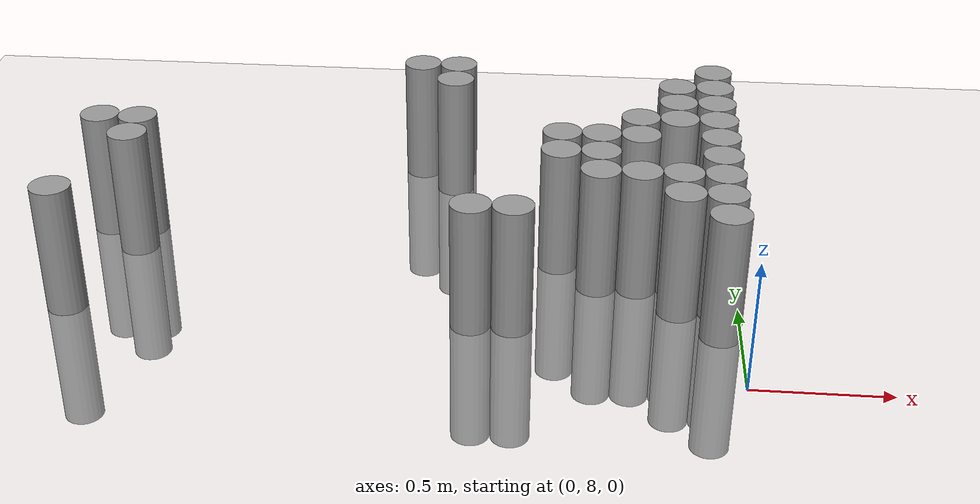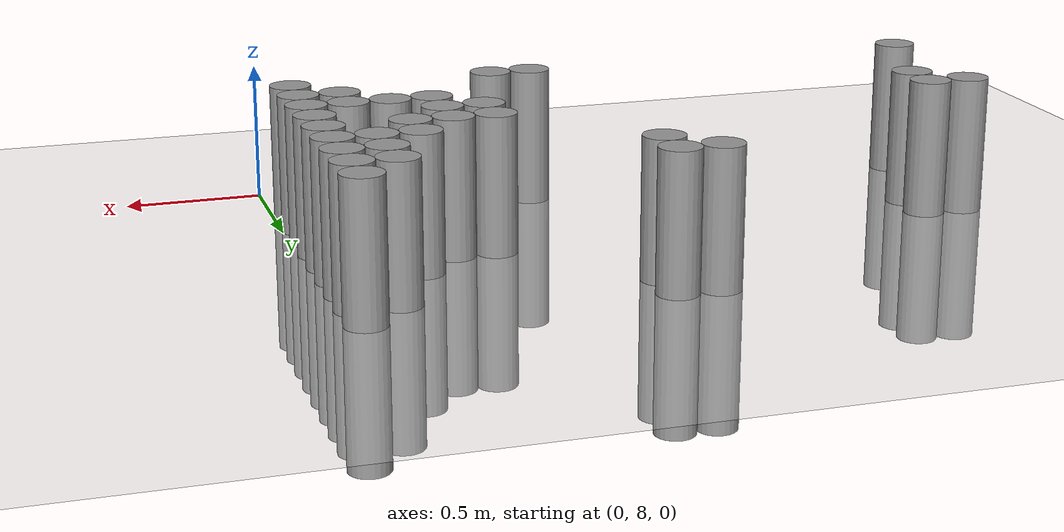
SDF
<sdf version="1.6">
 <world name="default">
  <model name="ground_plane">
   <static>1</static>
   <static>1</static>
   <link name="link">
    <collision name="collision">
     <geometry><plane><normal>0 0 1</normal><size>100 100</size></plane></geometry>
     <surface><friction><ode><mu>100</mu><mu2>50</mu2></ode></friction></surface>
    </collision>
    <visual name="visual">
     <cast_shadows>0</cast_shadows>
     <geometry><plane><normal>0 0 1</normal><size>100 100</size></plane></geometry>
     <material>
      <script><uri>file://media/materials/scripts/gazebo.material</uri><name>Gazebo/Grey</name></script>
     </material>
    </visual>
   </link>
  </model>
  <model name="unit_cylinder_169">
   <static>1</static>
   <pose>-2.475000 8.325000 0.000000 0.000000 0.000000 0.000000</pose>
   <link name="link">
    <inertial>
     <mass>1</mass>
     <inertia><ixx>0.145833</ixx><ixy>0</ixy><ixz>0</ixz><iyy>0.145833</iyy><iyz>0</iyz><izz>0.125</izz></inertia>
    </inertial>
    <collision name="collision">
     <geometry><cylinder><radius>0.075000</radius><length>1</length></cylinder></geometry>
    </collision>
    <visual name="visual">
     <geometry><cylinder><radius>0.075000</radius><length>1</length></cylinder></geometry>
     <material>
      <script><name>Gazebo/Grey</name><uri>file://media/materials/scripts/gazebo.material</uri></script>
     </material>
    </visual>
   </link>
  </model>
  <model name="unit_cylinder_170">
   <static>1</static>
   <pose>-2.475000 8.925000 0.000000 0.000000 0.000000 0.000000</pose>
   <link name="link">
    <inertial>
     <mass>1</mass>
     <inertia><ixx>0.145833</ixx><ixy>0</ixy><ixz>0</ixz><iyy>0.145833</iyy><iyz>0</iyz><izz>0.125</izz></inertia>
    </inertial>
    <collision name="collision">
     <geometry><cylinder><radius>0.075000</radius><length>1</length></cylinder></geometry>
    </collision>
    <visual name="visual">
     <geometry><cylinder><radius>0.075000</radius><length>1</length></cylinder></geometry>
     <material>
      <script><name>Gazebo/Grey</name><uri>file://media/materials/scripts/gazebo.material</uri></script>
     </material>
    </visual>
   </link>
  </model>
  <model name="unit_cylinder_171">
   <static>1</static>
   <pose>-2.325000 8.775000 0.000000 0.000000 0.000000 0.000000</pose>
   <link name="link">
    <inertial>
     <mass>1</mass>
     <inertia><ixx>0.145833</ixx><ixy>0</ixy><ixz>0</ixz><iyy>0.145833</iyy><iyz>0</iyz><izz>0.125</izz></inertia>
    </inertial>
    <collision name="collision">
     <geometry><cylinder><radius>0.075000</radius><length>1</length></cylinder></geometry>
    </collision>
    <visual name="visual">
     <geometry><cylinder><radius>0.075000</radius><length>1</length></cylinder></geometry>
     <material>
      <script><name>Gazebo/Grey</name><uri>file://media/materials/scripts/gazebo.material</uri></script>
     </material>
    </visual>
   </link>
  </model>
  <model name="unit_cylinder_172">
   <static>1</static>
   <pose>-2.325000 8.925000 0.000000 0.000000 0.000000 0.000000</pose>
   <link name="link">
    <inertial>
     <mass>1</mass>
     <inertia><ixx>0.145833</ixx><ixy>0</ixy><ixz>0</ixz><iyy>0.145833</iyy><iyz>0</iyz><izz>0.125</izz></inertia>
    </inertial>
    <collision name="collision">
     <geometry><cylinder><radius>0.075000</radius><length>1</length></cylinder></geometry>
    </collision>
    <visual name="visual">
     <geometry><cylinder><radius>0.075000</radius><length>1</length></cylinder></geometry>
     <material>
      <script><name>Gazebo/Grey</name><uri>file://media/materials/scripts/gazebo.material</uri></script>
     </material>
    </visual>
   </link>
  </model>
  <model name="unit_cylinder_192">
   <static>1</static>
   <pose>-1.275000 9.525000 0.000000 0.000000 0.000000 0.000000</pose>
   <link name="link">
    <inertial>
     <mass>1</mass>
     <inertia><ixx>0.145833</ixx><ixy>0</ixy><ixz>0</ixz><iyy>0.145833</iyy><iyz>0</iyz><izz>0.125</izz></inertia>
    </inertial>
    <collision name="collision">
     <geometry><cylinder><radius>0.075000</radius><length>1</length></cylinder></geometry>
    </collision>
    <visual name="visual">
     <geometry><cylinder><radius>0.075000</radius><length>1</length></cylinder></geometry>
     <material>
      <script><name>Gazebo/Grey</name><uri>file://media/materials/scripts/gazebo.material</uri></script>
     </material>
    </visual>
   </link>
  </model>
  <model name="unit_cylinder_195">
   <static>1</static>
   <pose>-1.125000 9.375000 0.000000 0.000000 0.000000 0.000000</pose>
   <link name="link">
    <inertial>
     <mass>1</mass>
     <inertia><ixx>0.145833</ixx><ixy>0</ixy><ixz>0</ixz><iyy>0.145833</iyy><iyz>0</iyz><izz>0.125</izz></inertia>
    </inertial>
    <collision name="collision">
     <geometry><cylinder><radius>0.075000</radius><length>1</length></cylinder></geometry>
    </collision>
    <visual name="visual">
     <geometry><cylinder><radius>0.075000</radius><length>1</length></cylinder></geometry>
     <material>
      <script><name>Gazebo/Grey</name><uri>file://media/materials/scripts/gazebo.material</uri></script>
     </material>
    </visual>
   </link>
  </model>
  <model name="unit_cylinder_196">
   <static>1</static>
   <pose>-1.125000 9.525000 0.000000 0.000000 0.000000 0.000000</pose>
   <link name="link">
    <inertial>
     <mass>1</mass>
     <inertia><ixx>0.145833</ixx><ixy>0</ixy><ixz>0</ixz><iyy>0.145833</iyy><iyz>0</iyz><izz>0.125</izz></inertia>
    </inertial>
    <collision name="collision">
     <geometry><cylinder><radius>0.075000</radius><length>1</length></cylinder></geometry>
    </collision>
    <visual name="visual">
     <geometry><cylinder><radius>0.075000</radius><length>1</length></cylinder></geometry>
     <material>
      <script><name>Gazebo/Grey</name><uri>file://media/materials/scripts/gazebo.material</uri></script>
     </material>
    </visual>
   </link>
  </model>
  <model name="unit_cylinder_198">
   <static>1</static>
   <pose>-0.975000 8.325000 0.000000 0.000000 0.000000 0.000000</pose>
   <link name="link">
    <inertial>
     <mass>1</mass>
     <inertia><ixx>0.145833</ixx><ixy>0</ixy><ixz>0</ixz><iyy>0.145833</iyy><iyz>0</iyz><izz>0.125</izz></inertia>
    </inertial>
    <collision name="collision">
     <geometry><cylinder><radius>0.075000</radius><length>1</length></cylinder></geometry>
    </collision>
    <visual name="visual">
     <geometry><cylinder><radius>0.075000</radius><length>1</length></cylinder></geometry>
     <material>
      <script><name>Gazebo/Grey</name><uri>file://media/materials/scripts/gazebo.material</uri></script>
     </material>
    </visual>
   </link>
  </model>
  <model name="unit_cylinder_199">
   <static>1</static>
   <pose>-0.825000 8.325000 0.000000 0.000000 0.000000 0.000000</pose>
   <link name="link">
    <inertial>
     <mass>1</mass>
     <inertia><ixx>0.145833</ixx><ixy>0</ixy><ixz>0</ixz><iyy>0.145833</iyy><iyz>0</iyz><izz>0.125</izz></inertia>
    </inertial>
    <collision name="collision">
     <geometry><cylinder><radius>0.075000</radius><length>1</length></cylinder></geometry>
    </collision>
    <visual name="visual">
     <geometry><cylinder><radius>0.075000</radius><length>1</length></cylinder></geometry>
     <material>
      <script><name>Gazebo/Grey</name><uri>file://media/materials/scripts/gazebo.material</uri></script>
     </material>
    </visual>
   </link>
  </model>
  <model name="unit_cylinder_200">
   <static>1</static>
   <pose>-0.675000 8.775000 0.000000 0.000000 0.000000 0.000000</pose>
   <link name="link">
    <inertial>
     <mass>1</mass>
     <inertia><ixx>0.145833</ixx><ixy>0</ixy><ixz>0</ixz><iyy>0.145833</iyy><iyz>0</iyz><izz>0.125</izz></inertia>
    </inertial>
    <collision name="collision">
     <geometry><cylinder><radius>0.075000</radius><length>1</length></cylinder></geometry>
    </collision>
    <visual name="visual">
     <geometry><cylinder><radius>0.075000</radius><length>1</length></cylinder></geometry>
     <material>
      <script><name>Gazebo/Grey</name><uri>file://media/materials/scripts/gazebo.material</uri></script>
     </material>
    </visual>
   </link>
  </model>
  <model name="unit_cylinder_201">
   <static>1</static>
   <pose>-0.675000 8.925000 0.000000 0.000000 0.000000 0.000000</pose>
   <link name="link">
    <inertial>
     <mass>1</mass>
     <inertia><ixx>0.145833</ixx><ixy>0</ixy><ixz>0</ixz><iyy>0.145833</iyy><iyz>0</iyz><izz>0.125</izz></inertia>
    </inertial>
    <collision name="collision">
     <geometry><cylinder><radius>0.075000</radius><length>1</length></cylinder></geometry>
    </collision>
    <visual name="visual">
     <geometry><cylinder><radius>0.075000</radius><length>1</length></cylinder></geometry>
     <material>
      <script><name>Gazebo/Grey</name><uri>file://media/materials/scripts/gazebo.material</uri></script>
     </material>
    </visual>
   </link>
  </model>
  <model name="unit_cylinder_202">
   <static>1</static>
   <pose>-0.525000 8.625000 0.000000 0.000000 0.000000 0.000000</pose>
   <link name="link">
    <inertial>
     <mass>1</mass>
     <inertia><ixx>0.145833</ixx><ixy>0</ixy><ixz>0</ixz><iyy>0.145833</iyy><iyz>0</iyz><izz>0.125</izz></inertia>
    </inertial>
    <collision name="collision">
     <geometry><cylinder><radius>0.075000</radius><length>1</length></cylinder></geometry>
    </collision>
    <visual name="visual">
     <geometry><cylinder><radius>0.075000</radius><length>1</length></cylinder></geometry>
     <material>
      <script><name>Gazebo/Grey</name><uri>file://media/materials/scripts/gazebo.material</uri></script>
     </material>
    </visual>
   </link>
  </model>
  <model name="unit_cylinder_203">
   <static>1</static>
   <pose>-0.525000 8.775000 0.000000 0.000000 0.000000 0.000000</pose>
   <link name="link">
    <inertial>
     <mass>1</mass>
     <inertia><ixx>0.145833</ixx><ixy>0</ixy><ixz>0</ixz><iyy>0.145833</iyy><iyz>0</iyz><izz>0.125</izz></inertia>
    </inertial>
    <collision name="collision">
     <geometry><cylinder><radius>0.075000</radius><length>1</length></cylinder></geometry>
    </collision>
    <visual name="visual">
     <geometry><cylinder><radius>0.075000</radius><length>1</length></cylinder></geometry>
     <material>
      <script><name>Gazebo/Grey</name><uri>file://media/materials/scripts/gazebo.material</uri></script>
     </material>
    </visual>
   </link>
  </model>
  <model name="unit_cylinder_204">
   <static>1</static>
   <pose>-0.525000 8.925000 0.000000 0.000000 0.000000 0.000000</pose>
   <link name="link">
    <inertial>
     <mass>1</mass>
     <inertia><ixx>0.145833</ixx><ixy>0</ixy><ixz>0</ixz><iyy>0.145833</iyy><iyz>0</iyz><izz>0.125</izz></inertia>
    </inertial>
    <collision name="collision">
     <geometry><cylinder><radius>0.075000</radius><length>1</length></cylinder></geometry>
    </collision>
    <visual name="visual">
     <geometry><cylinder><radius>0.075000</radius><length>1</length></cylinder></geometry>
     <material>
      <script><name>Gazebo/Grey</name><uri>file://media/materials/scripts/gazebo.material</uri></script>
     </material>
    </visual>
   </link>
  </model>
  <model name="unit_cylinder_205">
   <static>1</static>
   <pose>-0.375000 8.625000 0.000000 0.000000 0.000000 0.000000</pose>
   <link name="link">
    <inertial>
     <mass>1</mass>
     <inertia><ixx>0.145833</ixx><ixy>0</ixy><ixz>0</ixz><iyy>0.145833</iyy><iyz>0</iyz><izz>0.125</izz></inertia>
    </inertial>
    <collision name="collision">
     <geometry><cylinder><radius>0.075000</radius><length>1</length></cylinder></geometry>
    </collision>
    <visual name="visual">
     <geometry><cylinder><radius>0.075000</radius><length>1</length></cylinder></geometry>
     <material>
      <script><name>Gazebo/Grey</name><uri>file://media/materials/scripts/gazebo.material</uri></script>
     </material>
    </visual>
   </link>
  </model>
  <model name="unit_cylinder_206">
   <static>1</static>
   <pose>-0.375000 8.925000 0.000000 0.000000 0.000000 0.000000</pose>
   <link name="link">
    <inertial>
     <mass>1</mass>
     <inertia><ixx>0.145833</ixx><ixy>0</ixy><ixz>0</ixz><iyy>0.145833</iyy><iyz>0</iyz><izz>0.125</izz></inertia>
    </inertial>
    <collision name="collision">
     <geometry><cylinder><radius>0.075000</radius><length>1</length></cylinder></geometry>
    </collision>
    <visual name="visual">
     <geometry><cylinder><radius>0.075000</radius><length>1</length></cylinder></geometry>
     <material>
      <script><name>Gazebo/Grey</name><uri>file://media/materials/scripts/gazebo.material</uri></script>
     </material>
    </visual>
   </link>
  </model>
  <model name="unit_cylinder_207">
   <static>1</static>
   <pose>-0.375000 9.075000 0.000000 0.000000 0.000000 0.000000</pose>
   <link name="link">
    <inertial>
     <mass>1</mass>
     <inertia><ixx>0.145833</ixx><ixy>0</ixy><ixz>0</ixz><iyy>0.145833</iyy><iyz>0</iyz><izz>0.125</izz></inertia>
    </inertial>
    <collision name="collision">
     <geometry><cylinder><radius>0.075000</radius><length>1</length></cylinder></geometry>
    </collision>
    <visual name="visual">
     <geometry><cylinder><radius>0.075000</radius><length>1</length></cylinder></geometry>
     <material>
      <script><name>Gazebo/Grey</name><uri>file://media/materials/scripts/gazebo.material</uri></script>
     </material>
    </visual>
   </link>
  </model>
  <model name="unit_cylinder_213">
   <static>1</static>
   <pose>-0.225000 8.475000 0.000000 0.000000 0.000000 0.000000</pose>
   <link name="link">
    <inertial>
     <mass>1</mass>
     <inertia><ixx>0.145833</ixx><ixy>0</ixy><ixz>0</ixz><iyy>0.145833</iyy><iyz>0</iyz><izz>0.125</izz></inertia>
    </inertial>
    <collision name="collision">
     <geometry><cylinder><radius>0.075000</radius><length>1</length></cylinder></geometry>
    </collision>
    <visual name="visual">
     <geometry><cylinder><radius>0.075000</radius><length>1</length></cylinder></geometry>
     <material>
      <script><name>Gazebo/Grey</name><uri>file://media/materials/scripts/gazebo.material</uri></script>
     </material>
    </visual>
   </link>
  </model>
  <model name="unit_cylinder_214">
   <static>1</static>
   <pose>-0.225000 8.625000 0.000000 0.000000 0.000000 0.000000</pose>
   <link name="link">
    <inertial>
     <mass>1</mass>
     <inertia><ixx>0.145833</ixx><ixy>0</ixy><ixz>0</ixz><iyy>0.145833</iyy><iyz>0</iyz><izz>0.125</izz></inertia>
    </inertial>
    <collision name="collision">
     <geometry><cylinder><radius>0.075000</radius><length>1</length></cylinder></geometry>
    </collision>
    <visual name="visual">
     <geometry><cylinder><radius>0.075000</radius><length>1</length></cylinder></geometry>
     <material>
      <script><name>Gazebo/Grey</name><uri>file://media/materials/scripts/gazebo.material</uri></script>
     </material>
    </visual>
   </link>
  </model>
  <model name="unit_cylinder_215">
   <static>1</static>
   <pose>-0.225000 9.075000 0.000000 0.000000 0.000000 0.000000</pose>
   <link name="link">
    <inertial>
     <mass>1</mass>
     <inertia><ixx>0.145833</ixx><ixy>0</ixy><ixz>0</ixz><iyy>0.145833</iyy><iyz>0</iyz><izz>0.125</izz></inertia>
    </inertial>
    <collision name="collision">
     <geometry><cylinder><radius>0.075000</radius><length>1</length></cylinder></geometry>
    </collision>
    <visual name="visual">
     <geometry><cylinder><radius>0.075000</radius><length>1</length></cylinder></geometry>
     <material>
      <script><name>Gazebo/Grey</name><uri>file://media/materials/scripts/gazebo.material</uri></script>
     </material>
    </visual>
   </link>
  </model>
  <model name="unit_cylinder_216">
   <static>1</static>
   <pose>-0.225000 9.225000 0.000000 0.000000 0.000000 0.000000</pose>
   <link name="link">
    <inertial>
     <mass>1</mass>
     <inertia><ixx>0.145833</ixx><ixy>0</ixy><ixz>0</ixz><iyy>0.145833</iyy><iyz>0</iyz><izz>0.125</izz></inertia>
    </inertial>
    <collision name="collision">
     <geometry><cylinder><radius>0.075000</radius><length>1</length></cylinder></geometry>
    </collision>
    <visual name="visual">
     <geometry><cylinder><radius>0.075000</radius><length>1</length></cylinder></geometry>
     <material>
      <script><name>Gazebo/Grey</name><uri>file://media/materials/scripts/gazebo.material</uri></script>
     </material>
    </visual>
   </link>
  </model>
  <model name="unit_cylinder_217">
   <static>1</static>
   <pose>-0.225000 9.375000 0.000000 0.000000 0.000000 0.000000</pose>
   <link name="link">
    <inertial>
     <mass>1</mass>
     <inertia><ixx>0.145833</ixx><ixy>0</ixy><ixz>0</ixz><iyy>0.145833</iyy><iyz>0</iyz><izz>0.125</izz></inertia>
    </inertial>
    <collision name="collision">
     <geometry><cylinder><radius>0.075000</radius><length>1</length></cylinder></geometry>
    </collision>
    <visual name="visual">
     <geometry><cylinder><radius>0.075000</radius><length>1</length></cylinder></geometry>
     <material>
      <script><name>Gazebo/Grey</name><uri>file://media/materials/scripts/gazebo.material</uri></script>
     </material>
    </visual>
   </link>
  </model>
  <model name="unit_cylinder_239">
   <static>1</static>
   <pose>-0.075000 8.325000 0.000000 0.000000 0.000000 0.000000</pose>
   <link name="link">
    <inertial>
     <mass>1</mass>
     <inertia><ixx>0.145833</ixx><ixy>0</ixy><ixz>0</ixz><iyy>0.145833</iyy><iyz>0</iyz><izz>0.125</izz></inertia>
    </inertial>
    <collision name="collision">
     <geometry><cylinder><radius>0.075000</radius><length>1</length></cylinder></geometry>
    </collision>
    <visual name="visual">
     <geometry><cylinder><radius>0.075000</radius><length>1</length></cylinder></geometry>
     <material>
      <script><name>Gazebo/Grey</name><uri>file://media/materials/scripts/gazebo.material</uri></script>
     </material>
    </visual>
   </link>
  </model>
  <model name="unit_cylinder_240">
   <static>1</static>
   <pose>-0.075000 8.475000 0.000000 0.000000 0.000000 0.000000</pose>
   <link name="link">
    <inertial>
     <mass>1</mass>
     <inertia><ixx>0.145833</ixx><ixy>0</ixy><ixz>0</ixz><iyy>0.145833</iyy><iyz>0</iyz><izz>0.125</izz></inertia>
    </inertial>
    <collision name="collision">
     <geometry><cylinder><radius>0.075000</radius><length>1</length></cylinder></geometry>
    </collision>
    <visual name="visual">
     <geometry><cylinder><radius>0.075000</radius><length>1</length></cylinder></geometry>
     <material>
      <script><name>Gazebo/Grey</name><uri>file://media/materials/scripts/gazebo.material</uri></script>
     </material>
    </visual>
   </link>
  </model>
  <model name="unit_cylinder_241">
   <static>1</static>
   <pose>-0.075000 8.625000 0.000000 0.000000 0.000000 0.000000</pose>
   <link name="link">
    <inertial>
     <mass>1</mass>
     <inertia><ixx>0.145833</ixx><ixy>0</ixy><ixz>0</ixz><iyy>0.145833</iyy><iyz>0</iyz><izz>0.125</izz></inertia>
    </inertial>
    <collision name="collision">
     <geometry><cylinder><radius>0.075000</radius><length>1</length></cylinder></geometry>
    </collision>
    <visual name="visual">
     <geometry><cylinder><radius>0.075000</radius><length>1</length></cylinder></geometry>
     <material>
      <script><name>Gazebo/Grey</name><uri>file://media/materials/scripts/gazebo.material</uri></script>
     </material>
    </visual>
   </link>
  </model>
  <model name="unit_cylinder_242">
   <static>1</static>
   <pose>-0.075000 8.775000 0.000000 0.000000 0.000000 0.000000</pose>
   <link name="link">
    <inertial>
     <mass>1</mass>
     <inertia><ixx>0.145833</ixx><ixy>0</ixy><ixz>0</ixz><iyy>0.145833</iyy><iyz>0</iyz><izz>0.125</izz></inertia>
    </inertial>
    <collision name="collision">
     <geometry><cylinder><radius>0.075000</radius><length>1</length></cylinder></geometry>
    </collision>
    <visual name="visual">
     <geometry><cylinder><radius>0.075000</radius><length>1</length></cylinder></geometry>
     <material>
      <script><name>Gazebo/Grey</name><uri>file://media/materials/scripts/gazebo.material</uri></script>
     </material>
    </visual>
   </link>
  </model>
  <model name="unit_cylinder_243">
   <static>1</static>
   <pose>-0.075000 8.925000 0.000000 0.000000 0.000000 0.000000</pose>
   <link name="link">
    <inertial>
     <mass>1</mass>
     <inertia><ixx>0.145833</ixx><ixy>0</ixy><ixz>0</ixz><iyy>0.145833</iyy><iyz>0</iyz><izz>0.125</izz></inertia>
    </inertial>
    <collision name="collision">
     <geometry><cylinder><radius>0.075000</radius><length>1</length></cylinder></geometry>
    </collision>
    <visual name="visual">
     <geometry><cylinder><radius>0.075000</radius><length>1</length></cylinder></geometry>
     <material>
      <script><name>Gazebo/Grey</name><uri>file://media/materials/scripts/gazebo.material</uri></script>
     </material>
    </visual>
   </link>
  </model>
  <model name="unit_cylinder_244">
   <static>1</static>
   <pose>-0.075000 9.075000 0.000000 0.000000 0.000000 0.000000</pose>
   <link name="link">
    <inertial>
     <mass>1</mass>
     <inertia><ixx>0.145833</ixx><ixy>0</ixy><ixz>0</ixz><iyy>0.145833</iyy><iyz>0</iyz><izz>0.125</izz></inertia>
    </inertial>
    <collision name="collision">
     <geometry><cylinder><radius>0.075000</radius><length>1</length></cylinder></geometry>
    </collision>
    <visual name="visual">
     <geometry><cylinder><radius>0.075000</radius><length>1</length></cylinder></geometry>
     <material>
      <script><name>Gazebo/Grey</name><uri>file://media/materials/scripts/gazebo.material</uri></script>
     </material>
    </visual>
   </link>
  </model>
  <model name="unit_cylinder_245">
   <static>1</static>
   <pose>-0.075000 9.225000 0.000000 0.000000 0.000000 0.000000</pose>
   <link name="link">
    <inertial>
     <mass>1</mass>
     <inertia><ixx>0.145833</ixx><ixy>0</ixy><ixz>0</ixz><iyy>0.145833</iyy><iyz>0</iyz><izz>0.125</izz></inertia>
    </inertial>
    <collision name="collision">
     <geometry><cylinder><radius>0.075000</radius><length>1</length></cylinder></geometry>
    </collision>
    <visual name="visual">
     <geometry><cylinder><radius>0.075000</radius><length>1</length></cylinder></geometry>
     <material>
      <script><name>Gazebo/Grey</name><uri>file://media/materials/scripts/gazebo.material</uri></script>
     </material>
    </visual>
   </link>
  </model>
  <model name="unit_cylinder_246">
   <static>1</static>
   <pose>-0.075000 9.375000 0.000000 0.000000 0.000000 0.000000</pose>
   <link name="link">
    <inertial>
     <mass>1</mass>
     <inertia><ixx>0.145833</ixx><ixy>0</ixy><ixz>0</ixz><iyy>0.145833</iyy><iyz>0</iyz><izz>0.125</izz></inertia>
    </inertial>
    <collision name="collision">
     <geometry><cylinder><radius>0.075000</radius><length>1</length></cylinder></geometry>
    </collision>
    <visual name="visual">
     <geometry><cylinder><radius>0.075000</radius><length>1</length></cylinder></geometry>
     <material>
      <script><name>Gazebo/Grey</name><uri>file://media/materials/scripts/gazebo.material</uri></script>
     </material>
    </visual>
   </link>
  </model>
  <model name="unit_cylinder_247">
   <static>1</static>
   <pose>-0.075000 9.525000 0.000000 0.000000 0.000000 0.000000</pose>
   <link name="link">
    <inertial>
     <mass>1</mass>
     <inertia><ixx>0.145833</ixx><ixy>0</ixy><ixz>0</ixz><iyy>0.145833</iyy><iyz>0</iyz><izz>0.125</izz></inertia>
    </inertial>
    <collision name="collision">
     <geometry><cylinder><radius>0.075000</radius><length>1</length></cylinder></geometry>
    </collision>
    <visual name="visual">
     <geometry><cylinder><radius>0.075000</radius><length>1</length></cylinder></geometry>
     <material>
      <script><name>Gazebo/Grey</name><uri>file://media/materials/scripts/gazebo.material</uri></script>
     </material>
    </visual>
   </link>
  </model>
 </world>
</sdf>
